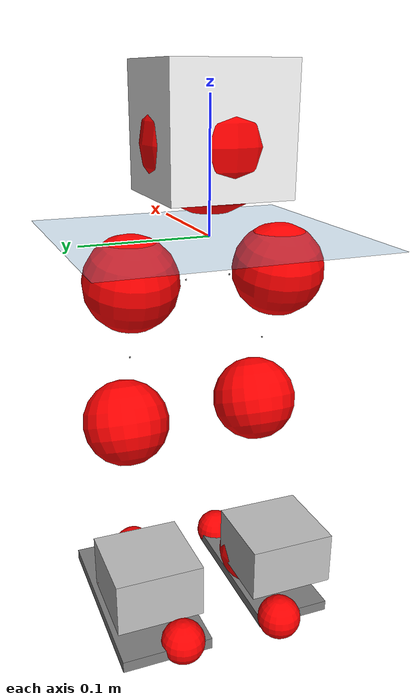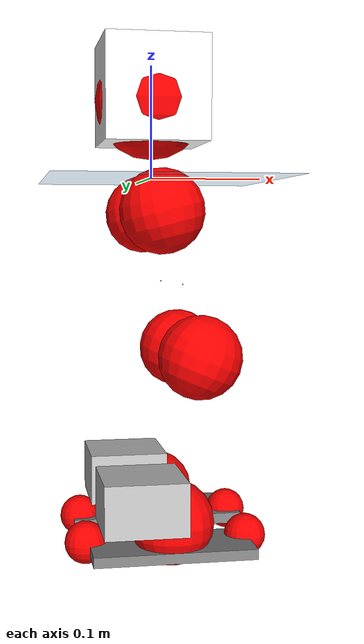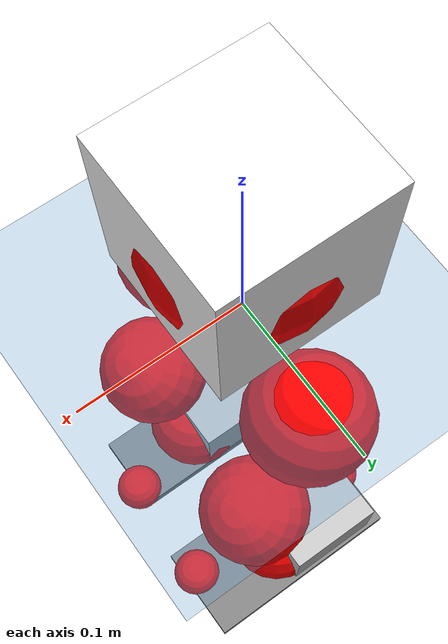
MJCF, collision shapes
<mujoco model="pi_12dof_release_v1">
  <compiler angle="radian" assetdir="assets" balanceinertia="true" inertiafromgeom="false"/>

  <option timestep="0.005" density="1.2" viscosity="2e-05"/>

  <size nkey="1"/>

  <visual>
    <quality shadowsize="8192"/>
    <map shadowclip="0.5"/>
  </visual>

  <default>
    <default class="/">
      <joint armature="0.01" damping="0.01" frictionloss="0.01"/>
      <geom contype="0" conaffinity="0" group="1" solref="-1000 -80"/>
      <site size="0.01 0.005 0.005" group="5"/>
      <general forcelimited="true" biastype="affine" gainprm="20" biasprm="0 -20 -0.5"/>
      <default class="foot">
        <geom size="0.0845 0.036 0.005" type="box" condim="6" group="4" priority="1" friction="0.9 0.2 0.2" solimp="0.015 1 0.005"/>
      </default>
      <default class="reward_collision_sphere">
        <geom group="5" rgba="1 0 0 1"/>
      </default>
    </default>
  </default>

  <asset>
    <texture type="skybox" colorspace="auto" name="//unnamed_texture_0" builtin="gradient" rgb1="0.95 0.95 0.95" rgb2="0.95 0.95 0.95" width="100" height="600"/>
    <texture type="2d" colorspace="auto" name="texplane" builtin="checker" rgb1="0.345 0.575 0.748" rgb2="0.345 0.575 0.748" markrgb="1 1 1" width="512" height="512"/>
    <material name="MatPlane" class="/" texture="texplane" texuniform="true" texrepeat="2 2" specular="0.9"/>
    <mesh name="baselink_1" class="/" file="baselink_1.STL"/>
    <mesh name="r_hip_pitch_link" class="/" file="r_hip_pitch_link.STL"/>
    <mesh name="r_hip_roll_link" class="/" file="r_hip_roll_link.STL"/>
    <mesh name="r_thigh_link" class="/" file="r_thigh_link.STL"/>
    <mesh name="r_calf_link" class="/" file="r_calf_link.STL"/>
    <mesh name="r_ankle_pitch_link" class="/" file="r_ankle_pitch_link.STL"/>
    <mesh name="r_ankle_roll_link" class="/" file="r_ankle_roll_link.STL"/>
    <mesh name="l_hip_pitch_link" class="/" file="l_hip_pitch_link.STL"/>
    <mesh name="l_hip_roll_link" class="/" file="l_hip_roll_link.STL"/>
    <mesh name="l_thigh_link" class="/" file="l_thigh_link.STL"/>
    <mesh name="l_calf_link" class="/" file="l_calf_link.STL"/>
    <mesh name="l_ankle_pitch_link" class="/" file="l_ankle_pitch_link.STL"/>
    <mesh name="l_ankle_roll_link" class="/" file="l_ankle_roll_link.STL"/>
  </asset>

  <worldbody>
    <geom name="floor" class="/" size="100 100 0.125" type="plane" group="0" material="MatPlane"/>
    <light name="toplight_shadow" class="/" pos="0 0 5" dir="0.0990148 0.0990148 -0.990148" type="directional" ambient="0.04 0.04 0.04" diffuse="0.55 0.55 0.55" specular="0.12 0.12 0.12"/>
    <light name="toplight_fill" class="/" pos="0 0 5" dir="0.0990148 0.0990148 -0.990148" type="directional" castshadow="false" ambient="0.04 0.04 0.04" diffuse="0.3 0.3 0.3" specular="0.08 0.08 0.08"/>
    <body name="trunk" pos="-0.00035519 0.000385809 0.000764768" quat="1 1.89864e-05 5.38051e-05 -3.71375e-05">
      <inertial pos="0.00311905 -0.00145419 0.0388597" quat="0.694675 0.00756362 0.00488186 0.719267" mass="1.65701" diaginertia="0.0128716 0.0022171 0.00323542"/>
      <joint name="//unnamed_joint_0" type="free"/>
      <geom name="//unnamed_geom_1" class="/" type="mesh" density="0" rgba="1 1 1 1" mesh="baselink_1"/>
      <geom name="//unnamed_geom_2" class="/" size="0.0459138 0.0459138 0.0459138" pos="0 0 0.0757531" type="box" rgba="1 1 1 1"/>
      <geom name="//unnamed_geom_3" class="reward_collision_sphere" size="0.0505052" pos="0 0 0.066284"/>
      <site name="imu" class="/" pos="-0.00276222 -0.0113862 0.00498032" size="0.00918276"/>
      <camera name="track" class="/" pos="0 -1.51119 0" quat="0.707107 0.707107 0 0" mode="trackcom"/>
      <camera name="ego_camera" class="/" pos="0.0789238 0 0.170445" quat="-0.5 -0.5 0.5 0.5"/>
      <body name="r_hip_pitch_link" pos="0.000286841 -0.0169986 -0.0314553" quat="0.992124 -0.000276986 -0.12526 0.000811675">
        <inertial pos="0.00170649 -0.0426566 0.000168715" quat="-0.021253 0.705753 -0.0277631 0.707594" mass="0.293014" diaginertia="0.000143135 2.47704e-05 6.41072e-05"/>
        <joint name="r_hip_pitch_joint" class="/" pos="0 0 0" axis="0.00655565 -0.999978 0.000819801" range="-1.75568 1.26218" armature="0.00947513" damping="0.0117939" frictionloss="0.00885051"/>
        <geom name="//unnamed_geom_4" class="/" type="mesh" density="0" rgba="0.75294 0.75294 0.75294 1" mesh="r_hip_pitch_link"/>
        <geom name="//unnamed_geom_5" class="/" size="0.000459138 0.000459138 0.000459138" type="box" rgba="0.75294 0.75294 0.75294 1"/>
        <body name="r_hip_roll_link" pos="0.000238393 -0.0419297 0.000103208" quat="1 2.85926e-06 0.00019114 -4.02244e-05">
          <inertial pos="-0.00132683 -0.00208075 -0.060467" quat="0.704948 -0.0786639 -0.0791532 0.700425" mass="0.300978" diaginertia="0.000432993 6.91506e-05 9.79464e-05"/>
          <joint name="r_hip_roll_joint" class="/" pos="0 0 0" axis="-0.999997 -0.00178058 0.00165081" range="-0.110144 0.531452" armature="0.00868613" damping="0.0101491" frictionloss="0.0096059"/>
          <geom name="//unnamed_geom_6" class="/" type="mesh" density="0" rgba="0.75294 0.75294 0.75294 1" mesh="r_hip_roll_link"/>
          <geom name="//unnamed_geom_7" class="/" size="0.000459138 0.000459138 0.000459138" type="box" rgba="0.75294 0.75294 0.75294 1"/>
          <geom name="//unnamed_geom_8" class="reward_collision_sphere" size="0.036731"/>
          <body name="r_thigh_link" pos="0.00194668 0.00273997 -0.0649392" quat="1 -7.60982e-05 -4.01798e-05 -2.05145e-06">
            <inertial pos="0.000840116 0.0012174 -0.0450237" quat="0.737231 0.67564 -0.000465305 -9.28236e-05" mass="0.088813" diaginertia="0.000160992 2.33205e-05 4.39398e-05"/>
            <joint name="r_thigh_joint" class="/" pos="0 0 0" axis="0.00187836 0.00109283 -0.999998" stiffness="0.000864953" range="-0.316787 0.575596" armature="0.00920417" damping="0" frictionloss="0.00813055"/>
            <geom name="//unnamed_geom_9" class="/" type="mesh" density="0" rgba="0.75294 0.75294 0.75294 1" mesh="r_thigh_link"/>
            <geom name="//unnamed_geom_10" class="/" size="0.000459138 0.000459138 0.000459138" type="box" rgba="0.75294 0.75294 0.75294 1"/>
            <body name="r_calf_link" pos="-0.000853954 -0.00173409 -0.0647657" quat="0.94765 2.65524e-05 0.319312 -5.47732e-05">
              <inertial pos="0.000612654 -0.000597017 -0.0662234" quat="0.999914 -0.0106584 0.00487286 0.00591306" mass="0.644025" diaginertia="0.00469485 0.00087183 0.000136195"/>
              <joint name="r_calf_joint" class="/" pos="0 0 0" axis="-0.0032433 -0.999986 -0.00418155" range="-1.61637 0.64793" armature="0.00880373" damping="0.0111503" frictionloss="0.00932077"/>
              <geom name="//unnamed_geom_11" class="/" type="mesh" density="0" rgba="0.75294 0.75294 0.75294 1" mesh="r_calf_link"/>
              <geom name="//unnamed_geom_12" class="/" size="0.000459138 0.000459138 0.000459138" type="box" rgba="0.75294 0.75294 0.75294 1"/>
              <geom name="//unnamed_geom_13" class="reward_collision_sphere" size="0.036731"/>
              <body name="r_ankle_pitch_link" pos="0.000556052 0.000614972 -0.133312" quat="0.980137 0.000194398 -0.19832 -0.000260921">
                <inertial pos="0.00521842 0.00271987 -0.00225237" quat="0.00621711 0.700008 0.00219314 0.714104" mass="0.137965" diaginertia="0.000409947 5.59479e-05 9.33787e-05"/>
                <joint name="r_ankle_pitch_joint" class="/" pos="0 0 0" axis="0.00567618 -0.999983 0.000912814" range="-1.29382 0.54443" armature="0.00918386" damping="0.010094" frictionloss="0.009829"/>
                <geom name="//unnamed_geom_14" class="/" type="mesh" density="0" rgba="0.75294 0.75294 0.75294 1" mesh="r_ankle_pitch_link"/>
                <geom name="//unnamed_geom_15" class="/" size="0.0358128 0.036731 0.0229569" type="box" rgba="0.75294 0.75294 0.75294 1"/>
                <body name="r_ankle_roll_link" pos="0.0797105 0.00182129 -0.000828342" quat="1 1.66945e-05 2.45978e-05 2.32014e-05">
                  <inertial pos="-0.0251721 0.000160589 -0.0114801" quat="0.561847 0.428468 0.433386 0.559392" mass="0.386212" diaginertia="0.0014 0.000253513 0.000204999"/>
                  <joint name="r_ankle_roll_joint" class="/" pos="0 0 0" axis="-0.999954 -0.00533183 0.00800264" range="-0.152079 0.123084" armature="0.00830536" damping="0.0119798" frictionloss="0.00944197"/>
                  <geom name="//unnamed_geom_16" class="/" type="mesh" density="0" rgba="0.75294 0.75294 0.75294 1" mesh="r_ankle_roll_link"/>
                  <geom name="//unnamed_geom_17" class="/" type="mesh" rgba="0.75294 0.75294 0.75294 1" mesh="r_ankle_roll_link"/>
                  <geom name="right_foot" class="foot" size="0.0702501 0.0316279 0.0044554" pos="-0.0536682 0 -0.0416642"/>
                  <geom name="//unnamed_geom_19" class="reward_collision_sphere" size="0.036731" pos="-0.0526158 0 -0.0189383"/>
                  <geom name="//unnamed_geom_20" class="reward_collision_sphere" size="0.0183655" pos="0.0157848 0.0151119 -0.0378766"/>
                  <geom name="//unnamed_geom_21" class="reward_collision_sphere" size="0.0183655" pos="-0.126278 0.0151119 -0.0378766"/>
                  <site name="right_foot" class="foot" pos="-0.0536682 0 -0.0416642" size="0.00918276"/>
                </body>
              </body>
            </body>
          </body>
        </body>
      </body>
      <body name="l_hip_pitch_link" pos="0.000863585 0.0184007 -0.0325703" quat="0.992184 0.000146619 -0.12478 -0.000168244">
        <inertial pos="0.0011992 0.0399994 -0.00177498" quat="-0.038815 0.706853 0.0281492 0.705734" mass="0.306204" diaginertia="0.000167394 2.56945e-05 7.66342e-05"/>
        <joint name="l_hip_pitch_joint" class="/" pos="0 0 0" axis="-0.00443033 0.999989 0.00156567" stiffness="0.000382343" range="-1.23521 1.76214" armature="0.00948232" damping="0.014523" frictionloss="0.00903635"/>
        <geom name="//unnamed_geom_22" class="/" type="mesh" density="0" rgba="0.75294 0.75294 0.75294 1" mesh="l_hip_pitch_link"/>
        <geom name="//unnamed_geom_23" class="/" size="0.000459138 0.000459138 0.000459138" type="box" rgba="0.75294 0.75294 0.75294 1"/>
        <body name="l_hip_roll_link" pos="0.00146229 0.0428839 0.000373119" quat="1 -4.97291e-05 -0.000253611 9.36213e-06">
          <inertial pos="-0.00269256 -0.000355934 -0.060198" quat="0.697553 -0.0772599 -0.0708115 0.708828" mass="0.296844" diaginertia="0.000414522 6.73256e-05 9.45431e-05"/>
          <joint name="l_hip_roll_joint" class="/" pos="0 0 0" axis="-1 -0.000171069 -0.000162748" range="-0.539333 0.132999" armature="0.00945388" damping="0" frictionloss="0.00915328"/>
          <geom name="//unnamed_geom_24" class="/" type="mesh" density="0" rgba="0.75294 0.75294 0.75294 1" mesh="l_hip_roll_link"/>
          <geom name="//unnamed_geom_25" class="/" size="0.000459138 0.000459138 0.000459138" type="box" rgba="0.75294 0.75294 0.75294 1"/>
          <geom name="//unnamed_geom_26" class="reward_collision_sphere" size="0.036731"/>
          <body name="l_thigh_link" pos="6.73987e-05 -0.00155494 -0.0662838" quat="1 -1.00424e-05 -1.13609e-05 1.49967e-06">
            <inertial pos="-0.000126468 -0.00129704 -0.0450331" quat="0.677602 0.735419 -0.0031275 0.00190433" mass="0.0868437" diaginertia="0.000161272 2.30729e-05 4.4731e-05"/>
            <joint name="l_thigh_joint" class="/" pos="0 0 0" axis="0.000241865 -0.000416517 -1" range="-0.603563 0.310499" armature="0.00911288" damping="0.00398683" frictionloss="0.00895546"/>
            <geom name="//unnamed_geom_27" class="/" type="mesh" density="0" rgba="0.75294 0.75294 0.75294 1" mesh="l_thigh_link"/>
            <geom name="//unnamed_geom_28" class="/" size="0.000459138 0.000459138 0.000459138" type="box" rgba="0.75294 0.75294 0.75294 1"/>
            <body name="l_calf_link" pos="-0.000421098 0.000852984 -0.0666625" quat="0.947703 -0.000291142 0.319153 0.000232191">
              <inertial pos="0.000238168 0.00352624 -0.0671483" quat="0.999984 0.00311518 -0.000122324 0.00472296" mass="0.605738" diaginertia="0.00441206 0.000839157 0.000129286"/>
              <joint name="l_calf_joint" class="/" pos="0 0 0" axis="0.000591675 0.999999 -0.000900567" stiffness="0.00225233" range="-0.605753 1.68681" armature="0.0091759" damping="0.00599995" frictionloss="0.00874415"/>
              <geom name="//unnamed_geom_29" class="/" type="mesh" density="0" rgba="0.75294 0.75294 0.75294 1" mesh="l_calf_link"/>
              <geom name="//unnamed_geom_30" class="/" size="0.000459138 0.000459138 0.000459138" type="box" rgba="0.75294 0.75294 0.75294 1"/>
              <geom name="//unnamed_geom_31" class="reward_collision_sphere" size="0.036731"/>
              <body name="l_ankle_pitch_link" pos="-0.00102009 0.000492426 -0.130879" quat="0.98005 -5.93882e-05 -0.198753 -2.76368e-06">
                <inertial pos="0.00528759 -0.000509227 -0.000109379" quat="-0.00202132 0.706936 0.002819 0.707269" mass="0.132593" diaginertia="0.000387072 5.35179e-05 9.10937e-05"/>
                <joint name="l_ankle_pitch_joint" class="/" pos="0 0 0" axis="-0.000481538 1 5.57644e-05" range="-0.540853 1.29759" armature="0.00878582" damping="0.00582663" frictionloss="0.00904282"/>
                <geom name="//unnamed_geom_32" class="/" type="mesh" density="0" rgba="0.75294 0.75294 0.75294 1" mesh="l_ankle_pitch_link"/>
                <geom name="//unnamed_geom_33" class="/" size="0.0358128 0.036731 0.0229569" type="box" rgba="0.75294 0.75294 0.75294 1"/>
                <body name="l_ankle_roll_link" pos="0.0810476 7.90475e-05 0.000327196" quat="1 -1.14194e-05 7.41194e-05 0.000107421">
                  <inertial pos="-0.0262627 -0.000227881 -0.0139059" quat="0.559434 0.431683 0.434871 0.558185" mass="0.398156" diaginertia="0.001463 0.000252174 0.000216319"/>
                  <joint name="l_ankle_roll_joint" class="/" pos="0 0 0" axis="-0.999995 -0.000276565 0.0030282" range="-0.168361 0.153367" armature="0.00941835" damping="0.00782911" frictionloss="0.00917239"/>
                  <geom name="//unnamed_geom_34" class="/" type="mesh" density="0" rgba="0.75294 0.75294 0.75294 1" mesh="l_ankle_roll_link"/>
                  <geom name="//unnamed_geom_35" class="/" type="mesh" rgba="0.75294 0.75294 0.75294 1" mesh="l_ankle_roll_link"/>
                  <geom name="left_foot" class="foot" size="0.0795317 0.0379286 0.00491135" pos="-0.0536682 0 -0.0416642"/>
                  <geom name="//unnamed_geom_37" class="reward_collision_sphere" size="0.036731" pos="-0.0526158 0 -0.0189383"/>
                  <geom name="//unnamed_geom_38" class="reward_collision_sphere" size="0.0183655" pos="0.0157848 -0.0151119 -0.0378766"/>
                  <geom name="//unnamed_geom_39" class="reward_collision_sphere" size="0.0183655" pos="-0.126278 -0.0151119 -0.0378766"/>
                  <site name="left_foot" class="foot" pos="-0.0536682 0 -0.0416642" size="0.00918276"/>
                </body>
              </body>
            </body>
          </body>
        </body>
      </body>
    </body>
  </worldbody>

  <contact>
    <pair class="/" geom1="floor" geom2="right_foot" name="//unnamed_contact_1"/>
    <pair class="/" geom1="floor" geom2="left_foot" name="//unnamed_contact_0"/>
  </contact>

  <actuator>
    <general name="r_hip_pitch_joint" class="/" joint="r_hip_pitch_joint" forcerange="-19.3843 19.3843" gainprm="18.567" biasprm="0 -18.567 -0.47271"/>
    <general name="r_hip_roll_joint" class="/" joint="r_hip_roll_joint" forcerange="-18.2074 18.2074" gainprm="18.567" biasprm="0 -18.567 -0.47271"/>
    <general name="r_thigh_joint" class="/" joint="r_thigh_joint" forcerange="-18.8326 18.8326" gainprm="18.567" biasprm="0 -18.567 -0.47271"/>
    <general name="r_calf_joint" class="/" joint="r_calf_joint" forcerange="-19.9379 19.9379" gainprm="18.567" biasprm="0 -18.567 -0.47271"/>
    <general name="r_ankle_pitch_joint" class="/" joint="r_ankle_pitch_joint" forcerange="-18.5403 18.5403" gainprm="18.567" biasprm="0 -18.567 -0.47271"/>
    <general name="r_ankle_roll_joint" class="/" joint="r_ankle_roll_joint" forcerange="-18.8082 18.8082" gainprm="18.567" biasprm="0 -18.567 -0.47271"/>
    <general name="l_hip_pitch_joint" class="/" joint="l_hip_pitch_joint" forcerange="-19.2348 19.2348" gainprm="18.567" biasprm="0 -18.567 -0.47271"/>
    <general name="l_hip_roll_joint" class="/" joint="l_hip_roll_joint" forcerange="-20.2187 20.2187" gainprm="18.567" biasprm="0 -18.567 -0.47271"/>
    <general name="l_thigh_joint" class="/" joint="l_thigh_joint" forcerange="-18.0431 18.0431" gainprm="18.567" biasprm="0 -18.567 -0.47271"/>
    <general name="l_calf_joint" class="/" joint="l_calf_joint" forcerange="-19.6761 19.6761" gainprm="18.567" biasprm="0 -18.567 -0.47271"/>
    <general name="l_ankle_pitch_joint" class="/" joint="l_ankle_pitch_joint" forcerange="-19.0456 19.0456" gainprm="18.567" biasprm="0 -18.567 -0.47271"/>
    <general name="l_ankle_roll_joint" class="/" joint="l_ankle_roll_joint" forcerange="-20.9639 20.9639" gainprm="18.567" biasprm="0 -18.567 -0.47271"/>
  </actuator>

  <sensor>
    <gyro site="imu" name="imu_angular_velocity"/>
    <velocimeter site="imu" name="imu_linear_velocity"/>
    <framelinvel objtype="site" objname="left_foot" name="left_foot_global_linear_velocity"/>
    <framelinvel objtype="site" objname="right_foot" name="right_foot_global_linear_velocity"/>
  </sensor>

  <keyframe>
    <key name="home" qpos="0 0 0.291 1 0 0 0 0.4 0 0 -0.8 0.4 0 -0.4 0 0 0.8 -0.4 0"/>
  </keyframe>
</mujoco>
